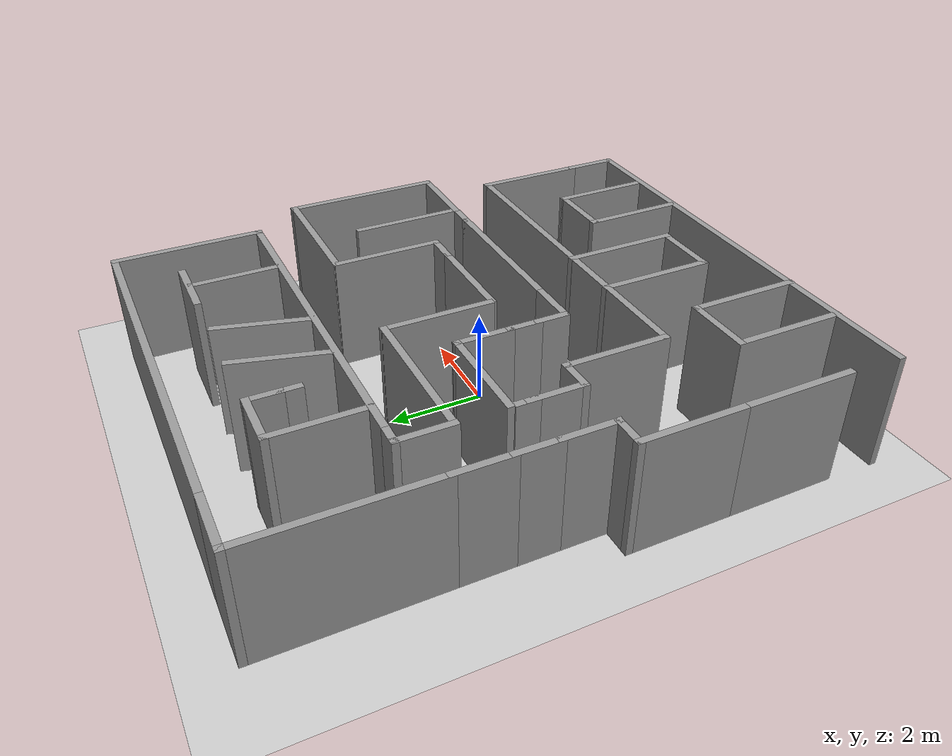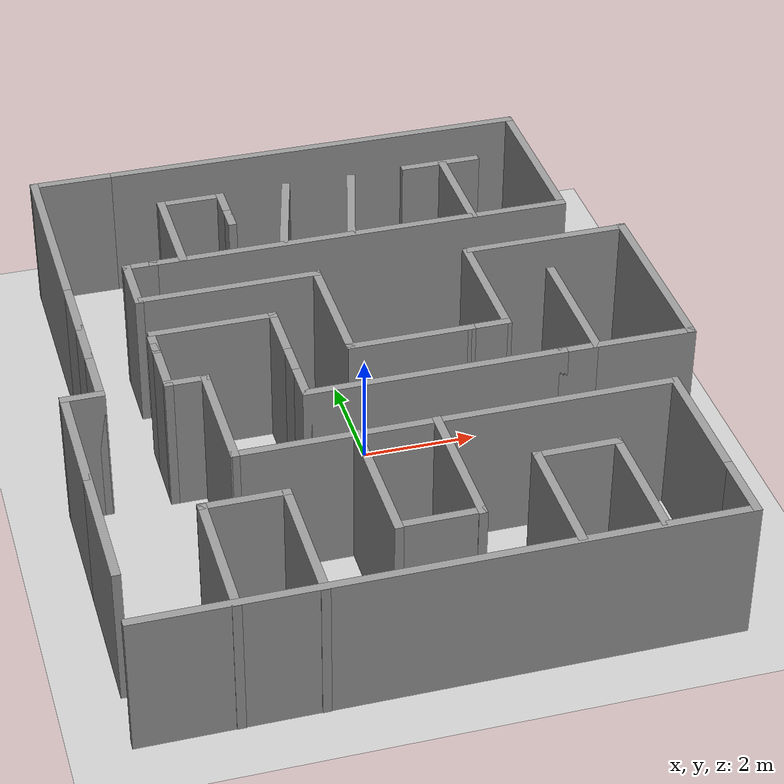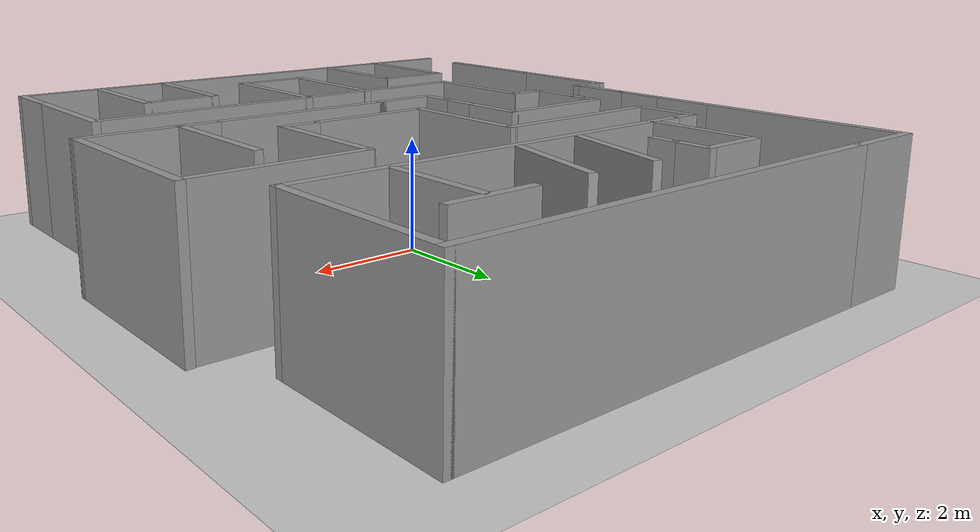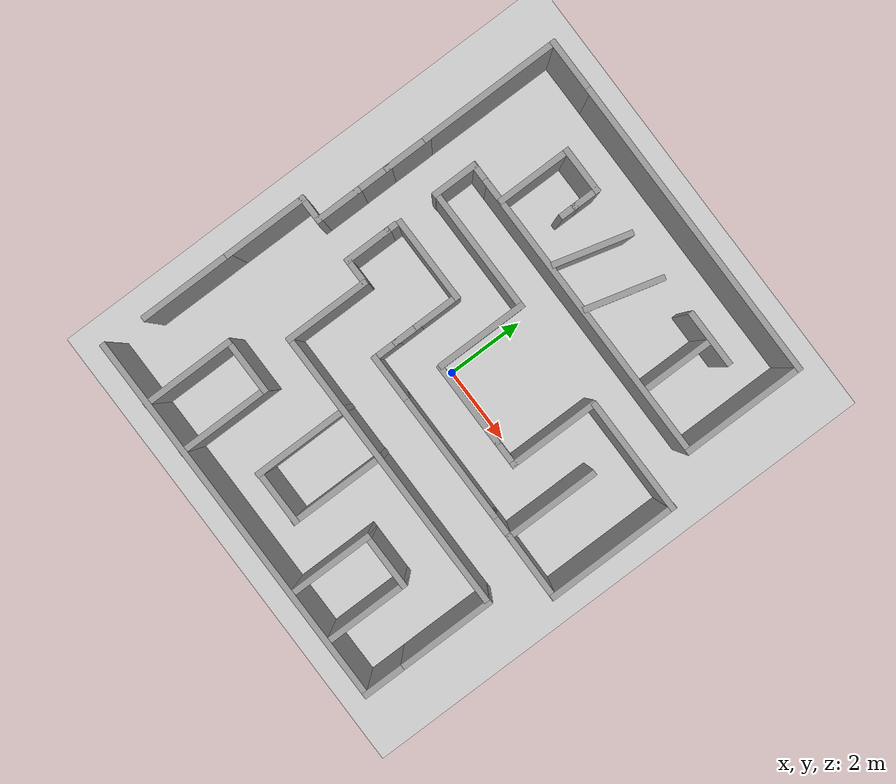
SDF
<sdf version="1.6">
 <world name="default">
  <plugin name="gazebo_occupancy_map" filename="libgazebo_grid_map_plugin.so">
   <map_resolution>0.05</map_resolution>
   <map_height>0.3</map_height>
   <map_size_x>14</map_size_x>
   <map_size_y>14</map_size_y>
   <init_robot_x>0</init_robot_x>
   <init_robot_y>0</init_robot_y>
  </plugin>
  <light name="sun" type="directional">
   <pose>0 0 10 0 -0 0</pose>
   <diffuse>0.8 0.8 0.8 1</diffuse>
   <specular>0.2 0.2 0.2 1</specular>
   <attenuation>
    <range>1000</range>
    <constant>0.9</constant>
    <linear>0.01</linear>
    <quadratic>0.001</quadratic>
   </attenuation>
   <direction>-0.5 0.1 -0.9</direction>
  </light>
  <model name="ground_plane">
   <static>1</static>
   <link name="link">
    <collision name="collision">
     <geometry><plane><normal>0 0 1</normal><size>100 100</size></plane></geometry>
     <surface><friction><ode><mu>100</mu><mu2>50</mu2></ode></friction></surface>
    </collision>
    <visual name="visual">
     <cast_shadows>0</cast_shadows>
     <geometry><plane><normal>0 0 1</normal><size>100 100</size></plane></geometry>
     <material>
      <script><uri>file://media/materials/scripts/gazebo.material</uri><name>Gazebo/Grey</name></script>
     </material>
    </visual>
   </link>
  </model>
  <gravity>0 0 -9.8</gravity>
  <magnetic_field>6e-06 2.3e-05 -4.2e-05</magnetic_field>
  <atmosphere type="adiabatic"/>
  <physics name="default_physics" default="0" type="ode">
   <max_step_size>0.001</max_step_size>
   <real_time_factor>1</real_time_factor>
   <real_time_update_rate>1000</real_time_update_rate>
  </physics>
  <scene><ambient>0.4 0.4 0.4 1</ambient><background>0.7 0.7 0.7 1</background><shadows>1</shadows></scene>
  <audio><device>default</device></audio>
  <spherical_coordinates>
   <surface_model>EARTH_WGS84</surface_model>
   <latitude_deg>0</latitude_deg>
   <longitude_deg>0</longitude_deg>
   <elevation>0</elevation>
   <heading_deg>0</heading_deg>
  </spherical_coordinates>
  <model name="xiaozhai">
   <pose>0.097063 0.192575 0 0 -0 0</pose>
   <link name="Wall_100">
    <collision name="Wall_100_Collision">
     <geometry><box><size>2.38 0.15 2.5</size></box></geometry>
     <pose>0 0 1.25 0 -0 0</pose>
    </collision>
    <visual name="Wall_100_Visual">
     <pose>0 0 1.25 0 -0 0</pose>
     <geometry><box><size>2.38 0.15 2.5</size></box></geometry>
     <material>
      <script><uri>file://media/materials/scripts/gazebo.material</uri><name>Gazebo/Grey</name></script>
      <ambient>1 1 1 1</ambient>
     </material>
     <meta><layer>0</layer></meta>
    </visual>
    <pose>-0.376512 0.838989 0 0 -0 -1.5708</pose>
   </link>
   <link name="Wall_102">
    <collision name="Wall_102_Collision">
     <geometry><box><size>3.04385 0.15 2.5</size></box></geometry>
     <pose>0 0 1.25 0 -0 0</pose>
    </collision>
    <visual name="Wall_102_Visual">
     <pose>0 0 1.25 0 -0 0</pose>
     <geometry><box><size>3.04385 0.15 2.5</size></box></geometry>
     <material>
      <script><uri>file://media/materials/scripts/gazebo.material</uri><name>Gazebo/Grey</name></script>
      <ambient>1 1 1 1</ambient>
     </material>
     <meta><layer>0</layer></meta>
    </visual>
    <pose>3.86641 1.94699 0 0 -0 0</pose>
   </link>
   <link name="Wall_104">
    <collision name="Wall_104_Collision">
     <geometry><box><size>2.4 0.15 2.5</size></box></geometry>
     <pose>0 0 1.25 0 -0 0</pose>
    </collision>
    <visual name="Wall_104_Visual">
     <pose>0 0 1.25 0 -0 0</pose>
     <geometry><box><size>2.4 0.15 2.5</size></box></geometry>
     <material>
      <script><uri>file://media/materials/scripts/gazebo.material</uri><name>Gazebo/Grey</name></script>
      <ambient>1 1 1 1</ambient>
     </material>
     <meta><layer>0</layer></meta>
    </visual>
    <pose>2.38349 0.798989 0 0 -0 1.5708</pose>
   </link>
   <link name="Wall_108">
    <collision name="Wall_108_Collision">
     <geometry><box><size>3.5 0.15 2.5</size></box></geometry>
     <pose>0 0 1.25 0 -0 0</pose>
    </collision>
    <visual name="Wall_108_Visual">
     <pose>0 0 1.25 0 -0 0</pose>
     <geometry><box><size>3.5 0.15 2.5</size></box></geometry>
     <material>
      <script><uri>file://media/materials/scripts/gazebo.material</uri><name>Gazebo/Grey</name></script>
      <ambient>1 1 1 1</ambient>
     </material>
     <meta><layer>0</layer></meta>
    </visual>
    <pose>5.31334 0.285214 0 0 -0 -1.5708</pose>
   </link>
   <link name="Wall_109">
    <collision name="Wall_109_Collision">
     <geometry><box><size>1.83031 0.15 2.5</size></box></geometry>
     <pose>0 0 1.25 0 -0 0</pose>
    </collision>
    <visual name="Wall_109_Visual">
     <pose>0 0 1.25 0 -0 0</pose>
     <geometry><box><size>1.83031 0.15 2.5</size></box></geometry>
     <material>
      <script><uri>file://media/materials/scripts/gazebo.material</uri><name>Gazebo/Grey</name></script>
      <ambient>1 1 1 1</ambient>
     </material>
     <meta><layer>0</layer></meta>
    </visual>
    <pose>4.47322 -1.39465 0 0 -0 3.13164</pose>
   </link>
   <link name="Wall_11">
    <collision name="Wall_11_Collision">
     <geometry><box><size>1.5 0.15 2.5</size></box></geometry>
     <pose>0 0 1.25 0 -0 0</pose>
    </collision>
    <visual name="Wall_11_Visual">
     <pose>0 0 1.25 0 -0 0</pose>
     <geometry><box><size>1.5 0.15 2.5</size></box></geometry>
     <material>
      <script><uri>file://media/materials/scripts/gazebo.material</uri><name>Gazebo/Grey</name></script>
      <ambient>1 1 1 1</ambient>
     </material>
     <meta><layer>0</layer></meta>
    </visual>
    <pose>2.78519 4.92821 0 0 -0 0</pose>
   </link>
   <link name="Wall_13">
    <collision name="Wall_13_Collision">
     <geometry><box><size>2 0.15 2.5</size></box></geometry>
     <pose>0 0 1.25 0 -0 0</pose>
    </collision>
    <visual name="Wall_13_Visual">
     <pose>0 0 1.25 0 -0 0</pose>
     <geometry><box><size>2 0.15 2.5</size></box></geometry>
     <material>
      <script><uri>file://media/materials/scripts/gazebo.material</uri><name>Gazebo/Grey</name></script>
      <ambient>1 1 1 1</ambient>
     </material>
     <meta><layer>0</layer></meta>
    </visual>
    <pose>0.803893 3.98226 0 0 -0 -1.8326</pose>
   </link>
   <link name="Wall_15">
    <collision name="Wall_15_Collision">
     <geometry><box><size>2 0.15 2.5</size></box></geometry>
     <pose>0 0 1.25 0 -0 0</pose>
    </collision>
    <visual name="Wall_15_Visual">
     <pose>0 0 1.25 0 -0 0</pose>
     <geometry><box><size>2 0.15 2.5</size></box></geometry>
     <material>
      <script><uri>file://media/materials/scripts/gazebo.material</uri><name>Gazebo/Grey</name></script>
      <ambient>1 1 1 1</ambient>
     </material>
     <meta><layer>0</layer></meta>
    </visual>
    <pose>-0.432646 4.02062 0 0 -0 -1.8326</pose>
   </link>
   <link name="Wall_17">
    <collision name="Wall_17_Collision">
     <geometry><box><size>1.25 0.15 2.5</size></box></geometry>
     <pose>0 0 1.25 0 -0 0</pose>
    </collision>
    <visual name="Wall_17_Visual">
     <pose>0 0 1.25 0 -0 0</pose>
     <geometry><box><size>1.25 0.15 2.5</size></box></geometry>
     <material>
      <script><uri>file://media/materials/scripts/gazebo.material</uri><name>Gazebo/Grey</name></script>
      <ambient>1 1 1 1</ambient>
     </material>
     <meta><layer>0</layer></meta>
    </visual>
    <pose>-1.99029 4.89323 0 0 -0 3.14159</pose>
   </link>
   <link name="Wall_19">
    <collision name="Wall_19_Collision">
     <geometry><box><size>2 0.15 2.5</size></box></geometry>
     <pose>0 0 1.25 0 -0 0</pose>
    </collision>
    <visual name="Wall_19_Visual">
     <pose>0 0 1.25 0 -0 0</pose>
     <geometry><box><size>2 0.15 2.5</size></box></geometry>
     <material>
      <script><uri>file://media/materials/scripts/gazebo.material</uri><name>Gazebo/Grey</name></script>
      <ambient>1 1 1 1</ambient>
     </material>
     <meta><layer>0</layer></meta>
    </visual>
    <pose>-2.54029 3.96823 0 0 -0 -1.5708</pose>
   </link>
   <link name="Wall_2">
    <collision name="Wall_2_Collision">
     <geometry><box><size>8 0.15 2.5</size></box></geometry>
     <pose>0 0 1.25 0 -0 0</pose>
    </collision>
    <visual name="Wall_2_Visual">
     <pose>0 0 1.25 0 -0 0</pose>
     <geometry><box><size>8 0.15 2.5</size></box></geometry>
     <material>
      <script><uri>file://media/materials/scripts/gazebo.material</uri><name>Gazebo/Grey</name></script>
      <ambient>1 1 1 1</ambient>
     </material>
     <meta><layer>0</layer></meta>
    </visual>
    <pose>0.597998 6.12111 0 0 -0 0</pose>
   </link>
   <link name="Wall_21">
    <collision name="Wall_21_Collision">
     <geometry><box><size>0.75 0.15 2.5</size></box></geometry>
     <pose>0 0 1.25 0 -0 0</pose>
    </collision>
    <visual name="Wall_21_Visual">
     <pose>0 0 1.25 0 -0 0</pose>
     <geometry><box><size>0.75 0.15 2.5</size></box></geometry>
     <material>
      <script><uri>file://media/materials/scripts/gazebo.material</uri><name>Gazebo/Grey</name></script>
      <ambient>1 1 1 1</ambient>
     </material>
     <meta><layer>0</layer></meta>
    </visual>
    <pose>-1.44029 4.59323 0 0 -0 -1.5708</pose>
   </link>
   <link name="Wall_23">
    <collision name="Wall_23_Collision">
     <geometry><box><size>0.5 0.15 2.5</size></box></geometry>
     <pose>0 0 1.25 0 -0 0</pose>
    </collision>
    <visual name="Wall_23_Visual">
     <pose>0 0 1.25 0 -0 0</pose>
     <geometry><box><size>0.5 0.15 2.5</size></box></geometry>
     <material>
      <script><uri>file://media/materials/scripts/gazebo.material</uri><name>Gazebo/Grey</name></script>
      <ambient>1 1 1 1</ambient>
     </material>
     <meta><layer>0</layer></meta>
    </visual>
    <pose>-1.44029 4.11823 0 0 -0 -1.5708</pose>
   </link>
   <link name="Wall_25">
    <collision name="Wall_25_Collision">
     <geometry><box><size>1.5 0.15 2.5</size></box></geometry>
     <pose>0 0 1.25 0 -0 0</pose>
    </collision>
    <visual name="Wall_25_Visual">
     <pose>0 0 1.25 0 -0 0</pose>
     <geometry><box><size>1.5 0.15 2.5</size></box></geometry>
     <material>
      <script><uri>file://media/materials/scripts/gazebo.material</uri><name>Gazebo/Grey</name></script>
      <ambient>1 1 1 1</ambient>
     </material>
     <meta><layer>0</layer></meta>
    </visual>
    <pose>-4.002 6.12111 0 0 -0 3.14159</pose>
   </link>
   <link name="Wall_26">
    <collision name="Wall_26_Collision">
     <geometry><box><size>3.75 0.15 2.5</size></box></geometry>
     <pose>0 0 1.25 0 -0 0</pose>
    </collision>
    <visual name="Wall_26_Visual">
     <pose>0 0 1.25 0 -0 0</pose>
     <geometry><box><size>3.75 0.15 2.5</size></box></geometry>
     <material>
      <script><uri>file://media/materials/scripts/gazebo.material</uri><name>Gazebo/Grey</name></script>
      <ambient>1 1 1 1</ambient>
     </material>
     <meta><layer>0</layer></meta>
    </visual>
    <pose>-4.677 4.32111 0 0 -0 -1.5708</pose>
   </link>
   <link name="Wall_28">
    <collision name="Wall_28_Collision">
     <geometry><box><size>0.62243 0.15 2.5</size></box></geometry>
     <pose>0 0 1.25 0 -0 0</pose>
    </collision>
    <visual name="Wall_28_Visual">
     <pose>0 0 1.25 0 -0 0</pose>
     <geometry><box><size>0.62243 0.15 2.5</size></box></geometry>
     <material>
      <script><uri>file://media/materials/scripts/gazebo.material</uri><name>Gazebo/Grey</name></script>
      <ambient>1 1 1 1</ambient>
     </material>
     <meta><layer>0</layer></meta>
    </visual>
    <pose>-3.31322 3.02111 0 0 -0 3.14159</pose>
   </link>
   <link name="Wall_29">
    <pose>-3.54943 2.20362 0 0 -0 -1.5708</pose>
    <visual name="Wall_29_Visual_0">
     <pose>-0.269333 0 1.25 0 -0 0</pose>
     <geometry><box><size>1.21133 0.15 2.5</size></box></geometry>
     <material>
      <script><uri>file://media/materials/scripts/gazebo.material</uri><name>Gazebo/Grey</name></script>
      <ambient>1 1 1 1</ambient>
     </material>
     <meta><layer>0</layer></meta>
    </visual>
    <collision name="Wall_29_Collision_0">
     <geometry><box><size>1.21133 0.15 2.5</size></box></geometry>
     <pose>-0.269333 0 1.25 0 -0 0</pose>
    </collision>
   </link>
   <link name="Wall_31">
    <collision name="Wall_31_Collision">
     <geometry><box><size>1.25 0.15 2.5</size></box></geometry>
     <pose>0 0 1.25 0 -0 0</pose>
    </collision>
    <visual name="Wall_31_Visual">
     <pose>0 0 1.25 0 -0 0</pose>
     <geometry><box><size>1.25 0.15 2.5</size></box></geometry>
     <material>
      <script><uri>file://media/materials/scripts/gazebo.material</uri><name>Gazebo/Grey</name></script>
      <ambient>1 1 1 1</ambient>
     </material>
     <meta><layer>0</layer></meta>
    </visual>
    <pose>-4.677 1.97111 0 0 -0 -1.5708</pose>
   </link>
   <link name="Wall_33">
    <collision name="Wall_33_Collision">
     <geometry><box><size>1 0.15 2.5</size></box></geometry>
     <pose>0 0 1.25 0 -0 0</pose>
    </collision>
    <visual name="Wall_33_Visual">
     <pose>0 0 1.25 0 -0 0</pose>
     <geometry><box><size>1 0.15 2.5</size></box></geometry>
     <material>
      <script><uri>file://media/materials/scripts/gazebo.material</uri><name>Gazebo/Grey</name></script>
      <ambient>1 1 1 1</ambient>
     </material>
     <meta><layer>0</layer></meta>
    </visual>
    <pose>-4.677 0.996108 0 0 -0 -1.5708</pose>
   </link>
   <link name="Wall_35">
    <collision name="Wall_35_Collision">
     <geometry><box><size>0.5 0.15 2.5</size></box></geometry>
     <pose>0 0 1.25 0 -0 0</pose>
    </collision>
    <visual name="Wall_35_Visual">
     <pose>0 0 1.25 0 -0 0</pose>
     <geometry><box><size>0.5 0.15 2.5</size></box></geometry>
     <material>
      <script><uri>file://media/materials/scripts/gazebo.material</uri><name>Gazebo/Grey</name></script>
      <ambient>1 1 1 1</ambient>
     </material>
     <meta><layer>0</layer></meta>
    </visual>
    <pose>-3.54943 0.598618 0 0 -0 -1.5708</pose>
   </link>
   <link name="Wall_37">
    <collision name="Wall_37_Collision">
     <geometry><box><size>1.25 0.15 2.5</size></box></geometry>
     <pose>0 0 1.25 0 -0 0</pose>
    </collision>
    <visual name="Wall_37_Visual">
     <pose>0 0 1.25 0 -0 0</pose>
     <geometry><box><size>1.25 0.15 2.5</size></box></geometry>
     <material>
      <script><uri>file://media/materials/scripts/gazebo.material</uri><name>Gazebo/Grey</name></script>
      <ambient>1 1 1 1</ambient>
     </material>
     <meta><layer>0</layer></meta>
    </visual>
    <pose>-4.677 0.021108 0 0 -0 -1.5708</pose>
   </link>
   <link name="Wall_4">
    <collision name="Wall_4_Collision">
     <geometry><box><size>3.25 0.15 2.5</size></box></geometry>
     <pose>0 0 1.25 0 -0 0</pose>
    </collision>
    <visual name="Wall_4_Visual">
     <pose>0 0 1.25 0 -0 0</pose>
     <geometry><box><size>3.25 0.15 2.5</size></box></geometry>
     <material>
      <script><uri>file://media/materials/scripts/gazebo.material</uri><name>Gazebo/Grey</name></script>
      <ambient>1 1 1 1</ambient>
     </material>
     <meta><layer>0</layer></meta>
    </visual>
    <pose>4.523 4.57111 0 0 -0 -1.5708</pose>
   </link>
   <link name="Wall_41">
    <collision name="Wall_41_Collision">
     <geometry><box><size>1.25 0.15 2.5</size></box></geometry>
     <pose>0 0 1.25 0 -0 0</pose>
    </collision>
    <visual name="Wall_41_Visual">
     <pose>0 0 1.25 0 -0 0</pose>
     <geometry><box><size>1.25 0.15 2.5</size></box></geometry>
     <material>
      <script><uri>file://media/materials/scripts/gazebo.material</uri><name>Gazebo/Grey</name></script>
      <ambient>1 1 1 1</ambient>
     </material>
     <meta><layer>0</layer></meta>
    </visual>
    <pose>-3.54943 0.003618 0 0 -0 -1.5708</pose>
   </link>
   <link name="Wall_43">
    <collision name="Wall_43_Collision">
     <geometry><box><size>0.778751 0.15 2.5</size></box></geometry>
     <pose>0 0 1.25 0 -0 0</pose>
    </collision>
    <visual name="Wall_43_Visual">
     <pose>0 0 1.25 0 -0 0</pose>
     <geometry><box><size>0.778751 0.15 2.5</size></box></geometry>
     <material>
      <script><uri>file://media/materials/scripts/gazebo.material</uri><name>Gazebo/Grey</name></script>
      <ambient>1 1 1 1</ambient>
     </material>
     <meta><layer>0</layer></meta>
    </visual>
    <pose>-3.23506 -0.546382 0 0 -0 0</pose>
   </link>
   <link name="Wall_44">
    <collision name="Wall_44_Collision">
     <geometry><box><size>2.25 0.15 2.5</size></box></geometry>
     <pose>0 0 1.25 0 -0 0</pose>
    </collision>
    <visual name="Wall_44_Visual">
     <pose>0 0 1.25 0 -0 0</pose>
     <geometry><box><size>2.25 0.15 2.5</size></box></geometry>
     <material>
      <script><uri>file://media/materials/scripts/gazebo.material</uri><name>Gazebo/Grey</name></script>
      <ambient>1 1 1 1</ambient>
     </material>
     <meta><layer>0</layer></meta>
    </visual>
    <pose>-2.92068 -1.6165 0 0 -0 -1.5708</pose>
   </link>
   <link name="Wall_46">
    <collision name="Wall_46_Collision">
     <geometry><box><size>0.75 0.15 2.5</size></box></geometry>
     <pose>0 0 1.25 0 -0 0</pose>
    </collision>
    <visual name="Wall_46_Visual">
     <pose>0 0 1.25 0 -0 0</pose>
     <geometry><box><size>0.75 0.15 2.5</size></box></geometry>
     <material>
      <script><uri>file://media/materials/scripts/gazebo.material</uri><name>Gazebo/Grey</name></script>
      <ambient>1 1 1 1</ambient>
     </material>
     <meta><layer>0</layer></meta>
    </visual>
    <pose>-4.977 -0.528892 0 0 -0 3.14159</pose>
   </link>
   <link name="Wall_47">
    <collision name="Wall_47_Collision">
     <geometry><box><size>2.25 0.15 2.5</size></box></geometry>
     <pose>0 0 1.25 0 -0 0</pose>
    </collision>
    <visual name="Wall_47_Visual">
     <pose>0 0 1.25 0 -0 0</pose>
     <geometry><box><size>2.25 0.15 2.5</size></box></geometry>
     <material>
      <script><uri>file://media/materials/scripts/gazebo.material</uri><name>Gazebo/Grey</name></script>
      <ambient>1 1 1 1</ambient>
     </material>
     <meta><layer>0</layer></meta>
    </visual>
    <pose>-5.277 -1.57889 0 0 -0 -1.5708</pose>
   </link>
   <link name="Wall_49">
    <collision name="Wall_49_Collision">
     <geometry><box><size>7.5 0.15 2.5</size></box></geometry>
     <pose>0 0 1.25 0 -0 0</pose>
    </collision>
    <visual name="Wall_49_Visual">
     <pose>0 0 1.25 0 -0 0</pose>
     <geometry><box><size>7.5 0.15 2.5</size></box></geometry>
     <material>
      <script><uri>file://media/materials/scripts/gazebo.material</uri><name>Gazebo/Grey</name></script>
      <ambient>1 1 1 1</ambient>
     </material>
     <meta><layer>0</layer></meta>
    </visual>
    <pose>0.754318 -2.6665 0 0 -0 0</pose>
   </link>
   <link name="Wall_51">
    <collision name="Wall_51_Collision">
     <geometry><box><size>2.5 0.15 2.5</size></box></geometry>
     <pose>0 0 1.25 0 -0 0</pose>
    </collision>
    <visual name="Wall_51_Visual">
     <pose>0 0 1.25 0 -0 0</pose>
     <geometry><box><size>2.5 0.15 2.5</size></box></geometry>
     <material>
      <script><uri>file://media/materials/scripts/gazebo.material</uri><name>Gazebo/Grey</name></script>
      <ambient>1 1 1 1</ambient>
     </material>
     <meta><layer>0</layer></meta>
    </visual>
    <pose>4.53592 -3.83574 0 0 -0 -1.5708</pose>
   </link>
   <link name="Wall_53">
    <collision name="Wall_53_Collision">
     <geometry><box><size>1.25 0.15 2.5</size></box></geometry>
     <pose>0 0 1.25 0 -0 0</pose>
    </collision>
    <visual name="Wall_53_Visual">
     <pose>0 0 1.25 0 -0 0</pose>
     <geometry><box><size>1.25 0.15 2.5</size></box></geometry>
     <material>
      <script><uri>file://media/materials/scripts/gazebo.material</uri><name>Gazebo/Grey</name></script>
      <ambient>1 1 1 1</ambient>
     </material>
     <meta><layer>0</layer></meta>
    </visual>
    <pose>4.53592 -5.56074 0 0 -0 -1.5708</pose>
   </link>
   <link name="Wall_54">
    <collision name="Wall_54_Collision">
     <geometry><box><size>10 0.15 2.5</size></box></geometry>
     <pose>0 0 1.25 0 -0 0</pose>
    </collision>
    <visual name="Wall_54_Visual">
     <pose>0 0 1.25 0 -0 0</pose>
     <geometry><box><size>10 0.15 2.5</size></box></geometry>
     <material>
      <script><uri>file://media/materials/scripts/gazebo.material</uri><name>Gazebo/Grey</name></script>
      <ambient>1 1 1 1</ambient>
     </material>
     <meta><layer>0</layer></meta>
    </visual>
    <pose>-0.38908 -6.11074 0 0 -0 3.14159</pose>
   </link>
   <link name="Wall_57">
    <collision name="Wall_57_Collision">
     <geometry><box><size>2.5 0.15 2.5</size></box></geometry>
     <pose>0 0 1.25 0 -0 0</pose>
    </collision>
    <visual name="Wall_57_Visual">
     <pose>0 0 1.25 0 -0 0</pose>
     <geometry><box><size>2.5 0.15 2.5</size></box></geometry>
     <material>
      <script><uri>file://media/materials/scripts/gazebo.material</uri><name>Gazebo/Grey</name></script>
      <ambient>1 1 1 1</ambient>
     </material>
     <meta><layer>0</layer></meta>
    </visual>
    <pose>-5.277 -3.80389 0 0 -0 -1.5708</pose>
   </link>
   <link name="Wall_6">
    <collision name="Wall_6_Collision">
     <geometry><box><size>7.75 0.15 2.5</size></box></geometry>
     <pose>0 0 1.25 0 -0 0</pose>
    </collision>
    <visual name="Wall_6_Visual">
     <pose>0 0 1.25 0 -0 0</pose>
     <geometry><box><size>7.75 0.15 2.5</size></box></geometry>
     <material>
      <script><uri>file://media/materials/scripts/gazebo.material</uri><name>Gazebo/Grey</name></script>
      <ambient>1 1 1 1</ambient>
     </material>
     <meta><layer>0</layer></meta>
    </visual>
    <pose>0.722998 3.02111 0 0 -0 3.14159</pose>
   </link>
   <link name="Wall_61">
    <collision name="Wall_61_Collision">
     <geometry><box><size>2.44583 0.15 2.5</size></box></geometry>
     <pose>0 0 1.25 0 -0 0</pose>
    </collision>
    <visual name="Wall_61_Visual">
     <pose>0 0 1.25 0 -0 0</pose>
     <geometry><box><size>2.44583 0.15 2.5</size></box></geometry>
     <material>
      <script><uri>file://media/materials/scripts/gazebo.material</uri><name>Gazebo/Grey</name></script>
      <ambient>1 1 1 1</ambient>
     </material>
     <meta><layer>0</layer></meta>
    </visual>
    <pose>-3.69351 -4.97319 0 0 -0 1.5708</pose>
   </link>
   <link name="Wall_62">
    <collision name="Wall_62_Collision">
     <geometry><box><size>1.5 0.15 2.5</size></box></geometry>
     <pose>0 0 1.25 0 -0 0</pose>
    </collision>
    <visual name="Wall_62_Visual">
     <pose>0 0 1.25 0 -0 0</pose>
     <geometry><box><size>1.5 0.15 2.5</size></box></geometry>
     <material>
      <script><uri>file://media/materials/scripts/gazebo.material</uri><name>Gazebo/Grey</name></script>
      <ambient>1 1 1 1</ambient>
     </material>
     <meta><layer>0</layer></meta>
    </visual>
    <pose>-3.01851 -3.81007 0 0 -0 0</pose>
   </link>
   <link name="Wall_63">
    <collision name="Wall_63_Collision">
     <geometry><box><size>2.44583 0.15 2.5</size></box></geometry>
     <pose>0 0 1.25 0 -0 0</pose>
    </collision>
    <visual name="Wall_63_Visual">
     <pose>0 0 1.25 0 -0 0</pose>
     <geometry><box><size>2.44583 0.15 2.5</size></box></geometry>
     <material>
      <script><uri>file://media/materials/scripts/gazebo.material</uri><name>Gazebo/Grey</name></script>
      <ambient>1 1 1 1</ambient>
     </material>
     <meta><layer>0</layer></meta>
    </visual>
    <pose>-2.34351 -4.97319 0 0 -0 -1.5708</pose>
   </link>
   <link name="Wall_65">
    <collision name="Wall_65_Collision">
     <geometry><box><size>2.54095 0.15 2.5</size></box></geometry>
     <pose>0 0 1.25 0 -0 0</pose>
    </collision>
    <visual name="Wall_65_Visual">
     <pose>0 0 1.25 0 -0 0</pose>
     <geometry><box><size>2.54095 0.15 2.5</size></box></geometry>
     <material>
      <script><uri>file://media/materials/scripts/gazebo.material</uri><name>Gazebo/Grey</name></script>
      <ambient>1 1 1 1</ambient>
     </material>
     <meta><layer>0</layer></meta>
    </visual>
    <pose>-0.904808 -3.85129 0 0 -0 -1.5708</pose>
   </link>
   <link name="Wall_67">
    <collision name="Wall_67_Collision">
     <geometry><box><size>1.5 0.15 2.5</size></box></geometry>
     <pose>0 0 1.25 0 -0 0</pose>
    </collision>
    <visual name="Wall_67_Visual">
     <pose>0 0 1.25 0 -0 0</pose>
     <geometry><box><size>1.5 0.15 2.5</size></box></geometry>
     <material>
      <script><uri>file://media/materials/scripts/gazebo.material</uri><name>Gazebo/Grey</name></script>
      <ambient>1 1 1 1</ambient>
     </material>
     <meta><layer>0</layer></meta>
    </visual>
    <pose>-0.229808 -5.03354 0 0 -0 0</pose>
   </link>
   <link name="Wall_68">
    <collision name="Wall_68_Collision">
     <geometry><box><size>2.54095 0.15 2.5</size></box></geometry>
     <pose>0 0 1.25 0 -0 0</pose>
    </collision>
    <visual name="Wall_68_Visual">
     <pose>0 0 1.25 0 -0 0</pose>
     <geometry><box><size>2.54095 0.15 2.5</size></box></geometry>
     <material>
      <script><uri>file://media/materials/scripts/gazebo.material</uri><name>Gazebo/Grey</name></script>
      <ambient>1 1 1 1</ambient>
     </material>
     <meta><layer>0</layer></meta>
    </visual>
    <pose>0.445192 -3.85129 0 0 -0 1.5708</pose>
   </link>
   <link name="Wall_70">
    <collision name="Wall_70_Collision">
     <geometry><box><size>2.25 0.15 2.5</size></box></geometry>
     <pose>0 0 1.25 0 -0 0</pose>
    </collision>
    <visual name="Wall_70_Visual">
     <pose>0 0 1.25 0 -0 0</pose>
     <geometry><box><size>2.25 0.15 2.5</size></box></geometry>
     <material>
      <script><uri>file://media/materials/scripts/gazebo.material</uri><name>Gazebo/Grey</name></script>
      <ambient>1 1 1 1</ambient>
     </material>
     <meta><layer>0</layer></meta>
    </visual>
    <pose>1.70895 -5.00601 0 0 -0 1.5708</pose>
   </link>
   <link name="Wall_71">
    <collision name="Wall_71_Collision">
     <geometry><box><size>1.5 0.15 2.5</size></box></geometry>
     <pose>0 0 1.25 0 -0 0</pose>
    </collision>
    <visual name="Wall_71_Visual">
     <pose>0 0 1.25 0 -0 0</pose>
     <geometry><box><size>1.5 0.15 2.5</size></box></geometry>
     <material>
      <script><uri>file://media/materials/scripts/gazebo.material</uri><name>Gazebo/Grey</name></script>
      <ambient>1 1 1 1</ambient>
     </material>
     <meta><layer>0</layer></meta>
    </visual>
    <pose>2.38395 -3.95601 0 0 -0 0</pose>
   </link>
   <link name="Wall_72">
    <collision name="Wall_72_Collision">
     <geometry><box><size>2.25 0.15 2.5</size></box></geometry>
     <pose>0 0 1.25 0 -0 0</pose>
    </collision>
    <visual name="Wall_72_Visual">
     <pose>0 0 1.25 0 -0 0</pose>
     <geometry><box><size>2.25 0.15 2.5</size></box></geometry>
     <material>
      <script><uri>file://media/materials/scripts/gazebo.material</uri><name>Gazebo/Grey</name></script>
      <ambient>1 1 1 1</ambient>
     </material>
     <meta><layer>0</layer></meta>
    </visual>
    <pose>3.05895 -5.00601 0 0 -0 -1.5708</pose>
   </link>
   <link name="Wall_74">
    <collision name="Wall_74_Collision">
     <geometry><box><size>3.25 0.15 2.5</size></box></geometry>
     <pose>0 0 1.25 0 -0 0</pose>
    </collision>
    <visual name="Wall_74_Visual">
     <pose>0 0 1.25 0 -0 0</pose>
     <geometry><box><size>3.25 0.15 2.5</size></box></geometry>
     <material>
      <script><uri>file://media/materials/scripts/gazebo.material</uri><name>Gazebo/Grey</name></script>
      <ambient>1 1 1 1</ambient>
     </material>
     <meta><layer>0</layer></meta>
    </visual>
    <pose>-1.9267 1.95385 0 0 -0 9.2e-05</pose>
   </link>
   <link name="Wall_76">
    <collision name="Wall_76_Collision">
     <geometry><box><size>2.25 0.15 2.5</size></box></geometry>
     <pose>0 0 1.25 0 -0 0</pose>
    </collision>
    <visual name="Wall_76_Visual">
     <pose>0 0 1.25 0 -0 0</pose>
     <geometry><box><size>2.25 0.15 2.5</size></box></geometry>
     <material>
      <script><uri>file://media/materials/scripts/gazebo.material</uri><name>Gazebo/Grey</name></script>
      <ambient>1 1 1 1</ambient>
     </material>
     <meta><layer>0</layer></meta>
    </visual>
    <pose>-2.46689 0.913703 0 0 -0 0</pose>
   </link>
   <link name="Wall_78">
    <collision name="Wall_78_Collision">
     <geometry><box><size>1.25 0.15 2.5</size></box></geometry>
     <pose>0 0 1.25 0 -0 0</pose>
    </collision>
    <visual name="Wall_78_Visual">
     <pose>0 0 1.25 0 -0 0</pose>
     <geometry><box><size>1.25 0.15 2.5</size></box></geometry>
     <material>
      <script><uri>file://media/materials/scripts/gazebo.material</uri><name>Gazebo/Grey</name></script>
      <ambient>1 1 1 1</ambient>
     </material>
     <meta><layer>0</layer></meta>
    </visual>
    <pose>-1.41689 0.363703 0 0 -0 -1.5708</pose>
   </link>
   <link name="Wall_79">
    <collision name="Wall_79_Collision">
     <geometry><box><size>0.75 0.15 2.5</size></box></geometry>
     <pose>0 0 1.25 0 -0 0</pose>
    </collision>
    <visual name="Wall_79_Visual">
     <pose>0 0 1.25 0 -0 0</pose>
     <geometry><box><size>0.75 0.15 2.5</size></box></geometry>
     <material>
      <script><uri>file://media/materials/scripts/gazebo.material</uri><name>Gazebo/Grey</name></script>
      <ambient>1 1 1 1</ambient>
     </material>
     <meta><layer>0</layer></meta>
    </visual>
    <pose>-1.41689 -0.486297 0 0 -0 -1.5708</pose>
   </link>
   <link name="Wall_8">
    <collision name="Wall_8_Collision">
     <geometry><box><size>2 0.15 2.5</size></box></geometry>
     <pose>0 0 1.25 0 -0 0</pose>
    </collision>
    <visual name="Wall_8_Visual">
     <pose>0 0 1.25 0 -0 0</pose>
     <geometry><box><size>2 0.15 2.5</size></box></geometry>
     <material>
      <script><uri>file://media/materials/scripts/gazebo.material</uri><name>Gazebo/Grey</name></script>
      <ambient>1 1 1 1</ambient>
     </material>
     <meta><layer>0</layer></meta>
    </visual>
    <pose>2.82729 3.9468 0 0 -0 1.5708</pose>
   </link>
   <link name="Wall_80">
    <collision name="Wall_80_Collision">
     <geometry><box><size>0.75 0.15 2.5</size></box></geometry>
     <pose>0 0 1.25 0 -0 0</pose>
    </collision>
    <visual name="Wall_80_Visual">
     <pose>0 0 1.25 0 -0 0</pose>
     <geometry><box><size>0.75 0.15 2.5</size></box></geometry>
     <material>
      <script><uri>file://media/materials/scripts/gazebo.material</uri><name>Gazebo/Grey</name></script>
      <ambient>1 1 1 1</ambient>
     </material>
     <meta><layer>0</layer></meta>
    </visual>
    <pose>-1.41689 -1.0863 0 0 -0 -1.5708</pose>
   </link>
   <link name="Wall_81">
    <collision name="Wall_81_Collision">
     <geometry><box><size>1.25 0.15 2.5</size></box></geometry>
     <pose>0 0 1.25 0 -0 0</pose>
    </collision>
    <visual name="Wall_81_Visual">
     <pose>0 0 1.25 0 -0 0</pose>
     <geometry><box><size>1.25 0.15 2.5</size></box></geometry>
     <material>
      <script><uri>file://media/materials/scripts/gazebo.material</uri><name>Gazebo/Grey</name></script>
      <ambient>1 1 1 1</ambient>
     </material>
     <meta><layer>0</layer></meta>
    </visual>
    <pose>-0.866891 -1.3863 0 0 -0 0</pose>
   </link>
   <link name="Wall_88">
    <collision name="Wall_88_Collision">
     <geometry><box><size>2.25 0.15 2.5</size></box></geometry>
     <pose>0 0 1.25 0 -0 0</pose>
    </collision>
    <visual name="Wall_88_Visual">
     <pose>0 0 1.25 0 -0 0</pose>
     <geometry><box><size>2.25 0.15 2.5</size></box></geometry>
     <material>
      <script><uri>file://media/materials/scripts/gazebo.material</uri><name>Gazebo/Grey</name></script>
      <ambient>1 1 1 1</ambient>
     </material>
     <meta><layer>0</layer></meta>
    </visual>
    <pose>0.689878 -0.326297 0 0 -0 0</pose>
   </link>
   <link name="Wall_90">
    <collision name="Wall_90_Collision">
     <geometry><box><size>3.5 0.15 2.5</size></box></geometry>
     <pose>0 0 1.25 0 -0 0</pose>
    </collision>
    <visual name="Wall_90_Visual">
     <pose>0 0 1.25 0 -0 0</pose>
     <geometry><box><size>3.5 0.15 2.5</size></box></geometry>
     <material>
      <script><uri>file://media/materials/scripts/gazebo.material</uri><name>Gazebo/Grey</name></script>
      <ambient>1 1 1 1</ambient>
     </material>
     <meta><layer>0</layer></meta>
    </visual>
    <pose>1.35811 -1.3863 0 0 -0 0</pose>
   </link>
   <link name="Wall_92">
    <collision name="Wall_92_Collision">
     <geometry><box><size>0.785712 0.15 2.5</size></box></geometry>
     <pose>0 0 1.25 0 -0 0</pose>
    </collision>
    <visual name="Wall_92_Visual">
     <pose>0 0 1.25 0 -0 0</pose>
     <geometry><box><size>0.785712 0.15 2.5</size></box></geometry>
     <material>
      <script><uri>file://media/materials/scripts/gazebo.material</uri><name>Gazebo/Grey</name></script>
      <ambient>1 1 1 1</ambient>
     </material>
     <meta><layer>0</layer></meta>
    </visual>
    <pose>2.06544 -0.326154 0 0 -0 0.00045</pose>
   </link>
   <link name="Wall_96">
    <collision name="Wall_96_Collision">
     <geometry><box><size>0.75 0.15 2.5</size></box></geometry>
     <pose>0 0 1.25 0 -0 0</pose>
    </collision>
    <visual name="Wall_96_Visual">
     <pose>0 0 1.25 0 -0 0</pose>
     <geometry><box><size>0.75 0.15 2.5</size></box></geometry>
     <material>
      <script><uri>file://media/materials/scripts/gazebo.material</uri><name>Gazebo/Grey</name></script>
      <ambient>1 1 1 1</ambient>
     </material>
     <meta><layer>0</layer></meta>
    </visual>
    <pose>3.33311 -1.3863 0 0 -0 0</pose>
   </link>
   <link name="Wall_97">
    <collision name="Wall_97_Collision">
     <geometry><box><size>2.5 0.15 2.5</size></box></geometry>
     <pose>0 0 1.25 0 -0 0</pose>
    </collision>
    <visual name="Wall_97_Visual">
     <pose>0 0 1.25 0 -0 0</pose>
     <geometry><box><size>2.5 0.15 2.5</size></box></geometry>
     <material>
      <script><uri>file://media/materials/scripts/gazebo.material</uri><name>Gazebo/Grey</name></script>
      <ambient>1 1 1 1</ambient>
     </material>
     <meta><layer>0</layer></meta>
    </visual>
    <pose>3.63311 -0.211297 0 0 -0 1.5708</pose>
   </link>
   <static>1</static>
  </model>
 </world>
</sdf>
